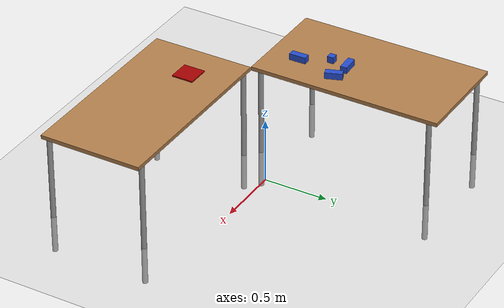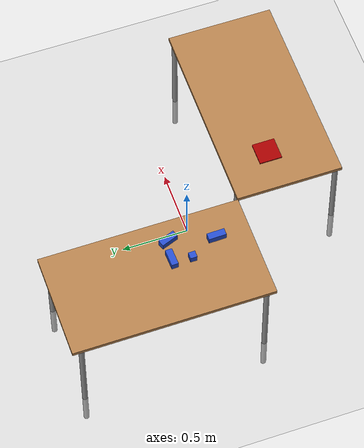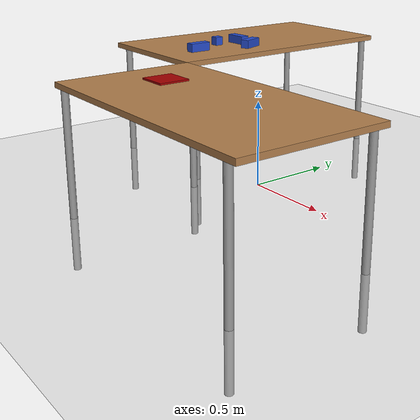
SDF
<sdf version="1.7">
 <world name="default">
  <light name="sun" type="directional">
   <pose>0 0 10 0 -0 0</pose>
   <diffuse>0.8 0.8 0.8 1</diffuse>
   <specular>0.2 0.2 0.2 1</specular>
   <attenuation>
    <range>1000</range>
    <constant>0.9</constant>
    <linear>0.01</linear>
    <quadratic>0.001</quadratic>
   </attenuation>
   <direction>-0.5 0.1 -0.9</direction>
   <spot><inner_angle>0</inner_angle><outer_angle>0</outer_angle><falloff>0</falloff></spot>
  </light>
  <model name="ground_plane">
   <static>1</static>
   <link name="link">
    <collision name="collision">
     <geometry><plane><normal>0 0 1</normal><size>100 100</size></plane></geometry>
     <surface>
      <contact><collide_bitmask>65535</collide_bitmask></contact>
      <friction><ode><mu>100</mu><mu2>50</mu2></ode></friction>
     </surface>
    </collision>
    <visual name="visual">
     <cast_shadows>0</cast_shadows>
     <geometry><plane><normal>0 0 1</normal><size>100 100</size></plane></geometry>
     <material>
      <script><uri>file://media/materials/scripts/gazebo.material</uri><name>Gazebo/Grey</name></script>
     </material>
    </visual>
   </link>
  </model>
  <gravity>0 0 -9.8</gravity>
  <magnetic_field>6e-06 2.3e-05 -4.2e-05</magnetic_field>
  <atmosphere type="adiabatic"/>
  <physics type="ode">
   <max_step_size>0.001</max_step_size>
   <real_time_factor>1</real_time_factor>
   <real_time_update_rate>1000</real_time_update_rate>
  </physics>
  <scene><ambient>0.4 0.4 0.4 1</ambient><background>0.7 0.7 0.7 1</background><shadows>1</shadows></scene>
  <spherical_coordinates>
   <surface_model>EARTH_WGS84</surface_model>
   <latitude_deg>0</latitude_deg>
   <longitude_deg>0</longitude_deg>
   <elevation>0</elevation>
   <heading_deg>0</heading_deg>
  </spherical_coordinates>
  <model name="table">
   <static>1</static>
   <link name="link">
    <collision name="surface">
     <pose>0 0 1 0 -0 0</pose>
     <geometry><box><size>1.5 0.8 0.03</size></box></geometry>
     <surface><friction><ode><mu>0.6</mu><mu2>0.6</mu2></ode></friction></surface>
    </collision>
    <visual name="visual1">
     <pose>0 0 1 0 -0 0</pose>
     <geometry><box><size>1.5 0.8 0.03</size></box></geometry>
     <material>
      <script><uri>file://media/materials/scripts/gazebo.material</uri><name>Gazebo/Wood</name></script>
     </material>
    </visual>
    <collision name="front_left_leg">
     <pose>0.68 0.38 0.5 0 -0 0</pose>
     <geometry><cylinder><radius>0.02</radius><length>1</length></cylinder></geometry>
    </collision>
    <visual name="front_left_leg">
     <pose>0.68 0.38 0.5 0 -0 0</pose>
     <geometry><cylinder><radius>0.02</radius><length>1</length></cylinder></geometry>
     <material>
      <script><uri>file://media/materials/scripts/gazebo.material</uri><name>Gazebo/Grey</name></script>
     </material>
    </visual>
    <collision name="front_right_leg">
     <pose>0.68 -0.38 0.5 0 -0 0</pose>
     <geometry><cylinder><radius>0.02</radius><length>1</length></cylinder></geometry>
    </collision>
    <visual name="front_right_leg">
     <pose>0.68 -0.38 0.5 0 -0 0</pose>
     <geometry><cylinder><radius>0.02</radius><length>1</length></cylinder></geometry>
     <material>
      <script><uri>file://media/materials/scripts/gazebo.material</uri><name>Gazebo/Grey</name></script>
     </material>
    </visual>
    <collision name="back_right_leg">
     <pose>-0.68 -0.38 0.5 0 -0 0</pose>
     <geometry><cylinder><radius>0.02</radius><length>1</length></cylinder></geometry>
    </collision>
    <visual name="back_right_leg">
     <pose>-0.68 -0.38 0.5 0 -0 0</pose>
     <geometry><cylinder><radius>0.02</radius><length>1</length></cylinder></geometry>
     <material>
      <script><uri>file://media/materials/scripts/gazebo.material</uri><name>Gazebo/Grey</name></script>
     </material>
    </visual>
    <collision name="back_left_leg">
     <pose>-0.68 0.38 0.5 0 -0 0</pose>
     <geometry><cylinder><radius>0.02</radius><length>1</length></cylinder></geometry>
    </collision>
    <visual name="back_left_leg">
     <pose>-0.68 0.38 0.5 0 -0 0</pose>
     <geometry><cylinder><radius>0.02</radius><length>1</length></cylinder></geometry>
     <material>
      <script><uri>file://media/materials/scripts/gazebo.material</uri><name>Gazebo/Grey</name></script>
     </material>
    </visual>
   </link>
   <pose>0.468234 -0.68668 -0.3 0 -0 0</pose>
  </model>
  <model name="table_0">
   <static>1</static>
   <link name="link">
    <collision name="surface">
     <pose>0 0 1 0 -0 0</pose>
     <geometry><box><size>1.5 0.8 0.03</size></box></geometry>
     <surface><friction><ode><mu>0.6</mu><mu2>0.6</mu2></ode></friction></surface>
    </collision>
    <visual name="visual1">
     <pose>0 0 1 0 -0 0</pose>
     <geometry><box><size>1.5 0.8 0.03</size></box></geometry>
     <material>
      <script><uri>file://media/materials/scripts/gazebo.material</uri><name>Gazebo/Wood</name></script>
     </material>
    </visual>
    <collision name="front_left_leg">
     <pose>0.68 0.38 0.5 0 -0 0</pose>
     <geometry><cylinder><radius>0.02</radius><length>1</length></cylinder></geometry>
    </collision>
    <visual name="front_left_leg">
     <pose>0.68 0.38 0.5 0 -0 0</pose>
     <geometry><cylinder><radius>0.02</radius><length>1</length></cylinder></geometry>
     <material>
      <script><uri>file://media/materials/scripts/gazebo.material</uri><name>Gazebo/Grey</name></script>
     </material>
    </visual>
    <collision name="front_right_leg">
     <pose>0.68 -0.38 0.5 0 -0 0</pose>
     <geometry><cylinder><radius>0.02</radius><length>1</length></cylinder></geometry>
    </collision>
    <visual name="front_right_leg">
     <pose>0.68 -0.38 0.5 0 -0 0</pose>
     <geometry><cylinder><radius>0.02</radius><length>1</length></cylinder></geometry>
     <material>
      <script><uri>file://media/materials/scripts/gazebo.material</uri><name>Gazebo/Grey</name></script>
     </material>
    </visual>
    <collision name="back_right_leg">
     <pose>-0.68 -0.38 0.5 0 -0 0</pose>
     <geometry><cylinder><radius>0.02</radius><length>1</length></cylinder></geometry>
    </collision>
    <visual name="back_right_leg">
     <pose>-0.68 -0.38 0.5 0 -0 0</pose>
     <geometry><cylinder><radius>0.02</radius><length>1</length></cylinder></geometry>
     <material>
      <script><uri>file://media/materials/scripts/gazebo.material</uri><name>Gazebo/Grey</name></script>
     </material>
    </visual>
    <collision name="back_left_leg">
     <pose>-0.68 0.38 0.5 0 -0 0</pose>
     <geometry><cylinder><radius>0.02</radius><length>1</length></cylinder></geometry>
    </collision>
    <visual name="back_left_leg">
     <pose>-0.68 0.38 0.5 0 -0 0</pose>
     <geometry><cylinder><radius>0.02</radius><length>1</length></cylinder></geometry>
     <material>
      <script><uri>file://media/materials/scripts/gazebo.material</uri><name>Gazebo/Grey</name></script>
     </material>
    </visual>
   </link>
   <pose>-0.689396 0.463337 -0.3 0 0 -1.5708</pose>
  </model>
  <model name="red_plate">
   <link name="link">
    <inertial>
     <mass>1</mass>
     <inertia>
      <ixx>0.166667</ixx>
      <ixy>0</ixy>
      <ixz>0</ixz>
      <iyy>0.166667</iyy>
      <iyz>0</iyz>
      <izz>0.166667</izz>
     </inertia>
    </inertial>
    <visual name="visual">
     <geometry><box><size>0.169497 0.169497 0.009721</size></box></geometry>
     <material>
      <script><name>Gazebo/Grey</name><uri>file://media/materials/scripts/gazebo.material</uri></script>
      <shader type="pixel"><normal_map>__default__</normal_map></shader>
      <ambient>0.643 0 0 1</ambient>
      <diffuse>0.643 0 0 1</diffuse>
      <specular>0.643 0 0 1</specular>
      <emissive>0 0 0 1</emissive>
     </material>
    </visual>
    <collision name="collision">
     <geometry><box><size>0.169497 0.169497 0.009721</size></box></geometry>
     <surface>
      <friction>
       <ode><mu>1</mu><mu2>1</mu2><fdir1>0 0 0</fdir1><slip1>0</slip1><slip2>0</slip2></ode>
       <torsional>
        <coefficient>1</coefficient>
        <patch_radius>0</patch_radius>
        <surface_radius>0</surface_radius>
        <use_patch_radius>1</use_patch_radius>
        <ode><slip>0</slip></ode>
       </torsional>
      </friction>
      <bounce><restitution_coefficient>0</restitution_coefficient><threshold>1e+06</threshold></bounce>
      <contact>
       <collide_without_contact>0</collide_without_contact>
       <collide_without_contact_bitmask>1</collide_without_contact_bitmask>
       <collide_bitmask>1</collide_bitmask>
       <ode>
        <soft_cfm>0</soft_cfm>
        <soft_erp>0.2</soft_erp>
        <kp>1e+13</kp>
        <kd>1</kd>
        <max_vel>0.01</max_vel>
        <min_depth>0</min_depth>
       </ode>
       <bullet>
        <split_impulse>1</split_impulse>
        <split_impulse_penetration_threshold>-0.01</split_impulse_penetration_threshold>
        <soft_cfm>0</soft_cfm>
        <soft_erp>0.2</soft_erp>
        <kp>1e+13</kp>
        <kd>1</kd>
       </bullet>
      </contact>
     </surface>
    </collision>
   </link>
   <static>0</static>
   <pose>0.025561 -0.623828 0.71986 0 -3e-06 2.4e-05</pose>
  </model>
  <model name="unit_box_red">
   <link name="link">
    <inertial>
     <mass>0.00013169</mass>
     <inertia><ixx>6e-08</ixx><ixy>0</ixy><ixz>0</ixz><iyy>6e-08</iyy><iyz>0</iyz><izz>6e-08</izz></inertia>
    </inertial>
    <visual name="visual">
     <geometry><box><size>0.050877 0.050877 0.050877</size></box></geometry>
     <material>
      <script><name>Gazebo/Blue</name><uri>file://media/materials/scripts/gazebo.material</uri></script>
      <shader type="pixel"><normal_map>__default__</normal_map></shader>
      <ambient>0.639 0 0 1</ambient>
      <diffuse>0.639 0 0 1</diffuse>
      <specular>0.639 0 0 1</specular>
      <emissive>0 0 0 1</emissive>
     </material>
    </visual>
    <collision name="collision">
     <geometry><box><size>0.050877 0.050877 0.050877</size></box></geometry>
     <surface>
      <friction>
       <ode><mu>50</mu><mu2>50</mu2><fdir1>0 0 0</fdir1><slip1>0</slip1><slip2>0</slip2></ode>
       <torsional>
        <coefficient>1</coefficient>
        <patch_radius>0</patch_radius>
        <surface_radius>0</surface_radius>
        <use_patch_radius>1</use_patch_radius>
        <ode><slip>0</slip></ode>
       </torsional>
      </friction>
      <bounce><restitution_coefficient>0</restitution_coefficient><threshold>1e+06</threshold></bounce>
      <contact>
       <collide_without_contact>0</collide_without_contact>
       <collide_without_contact_bitmask>1</collide_without_contact_bitmask>
       <collide_bitmask>1</collide_bitmask>
       <ode>
        <soft_cfm>0</soft_cfm>
        <soft_erp>0.2</soft_erp>
        <kp>1e+13</kp>
        <kd>1</kd>
        <max_vel>0.01</max_vel>
        <min_depth>0</min_depth>
       </ode>
       <bullet>
        <split_impulse>1</split_impulse>
        <split_impulse_penetration_threshold>-0.01</split_impulse_penetration_threshold>
        <soft_cfm>0</soft_cfm>
        <soft_erp>0.2</soft_erp>
        <kp>1e+13</kp>
        <kd>1</kd>
       </bullet>
      </contact>
     </surface>
    </collision>
   </link>
   <static>0</static>
   <pose>-0.643723 0.180518 0.740437 2e-05 5.7e-05 0.000165</pose>
  </model>
  <light name="user_directional_light_0" type="directional">
   <pose>1.51524 -2.18451 1 0 -0 0</pose>
   <diffuse>0.5 0.5 0.5 1</diffuse>
   <specular>0.1 0.1 0.1 1</specular>
   <direction>0.1 0.1 -0.9</direction>
   <attenuation>
    <range>20</range>
    <constant>0.5</constant>
    <linear>0.01</linear>
    <quadratic>0.001</quadratic>
   </attenuation>
   <spot><inner_angle>0</inner_angle><outer_angle>0</outer_angle><falloff>0</falloff></spot>
  </light>
  <light name="user_directional_light_1" type="directional">
   <pose>-1.70236 1.56902 1 0 -0 0</pose>
   <diffuse>0.5 0.5 0.5 1</diffuse>
   <specular>0.1 0.1 0.1 1</specular>
   <direction>0.1 0.1 -0.9</direction>
   <attenuation>
    <range>20</range>
    <constant>0.5</constant>
    <linear>0.01</linear>
    <quadratic>0.001</quadratic>
   </attenuation>
   <spot><inner_angle>0</inner_angle><outer_angle>0</outer_angle><falloff>0</falloff></spot>
  </light>
  <model name="unit_box_red_clone">
   <link name="link">
    <inertial>
     <mass>0.00013169</mass>
     <inertia><ixx>6e-08</ixx><ixy>0</ixy><ixz>0</ixz><iyy>6e-08</iyy><iyz>0</iyz><izz>6e-08</izz></inertia>
    </inertial>
    <visual name="visual">
     <geometry><box><size>0.050877 0.131313 0.050877</size></box></geometry>
     <material>
      <script><name>Gazebo/Blue</name><uri>file://media/materials/scripts/gazebo.material</uri></script>
      <shader type="pixel"><normal_map>__default__</normal_map></shader>
      <ambient>0.639 0 0 1</ambient>
      <diffuse>0.639 0 0 1</diffuse>
      <specular>0.639 0 0 1</specular>
      <emissive>0 0 0 1</emissive>
     </material>
    </visual>
    <collision name="collision">
     <geometry><box><size>0.050877 0.131313 0.050877</size></box></geometry>
     <surface>
      <friction>
       <ode><mu>50</mu><mu2>50</mu2><fdir1>0 0 0</fdir1><slip1>0</slip1><slip2>0</slip2></ode>
       <torsional>
        <coefficient>1</coefficient>
        <patch_radius>0</patch_radius>
        <surface_radius>0</surface_radius>
        <use_patch_radius>1</use_patch_radius>
        <ode><slip>0</slip></ode>
       </torsional>
      </friction>
      <bounce><restitution_coefficient>0</restitution_coefficient><threshold>1e+06</threshold></bounce>
      <contact>
       <collide_without_contact>0</collide_without_contact>
       <collide_without_contact_bitmask>1</collide_without_contact_bitmask>
       <collide_bitmask>1</collide_bitmask>
       <ode>
        <soft_cfm>0</soft_cfm>
        <soft_erp>0.2</soft_erp>
        <kp>1e+13</kp>
        <kd>1</kd>
        <max_vel>0.01</max_vel>
        <min_depth>0</min_depth>
       </ode>
       <bullet>
        <split_impulse>1</split_impulse>
        <split_impulse_penetration_threshold>-0.01</split_impulse_penetration_threshold>
        <soft_cfm>0</soft_cfm>
        <soft_erp>0.2</soft_erp>
        <kp>1e+13</kp>
        <kd>1</kd>
       </bullet>
      </contact>
     </surface>
    </collision>
   </link>
   <static>0</static>
   <pose>-0.53902 -0.034339 0.740437 0 5.4e-05 0.017597</pose>
  </model>
  <model name="unit_box_red_clone_clone">
   <link name="link">
    <inertial>
     <mass>0.00013169</mass>
     <inertia><ixx>6e-08</ixx><ixy>0</ixy><ixz>0</ixz><iyy>6e-08</iyy><iyz>0</iyz><izz>6e-08</izz></inertia>
    </inertial>
    <visual name="visual">
     <geometry><box><size>0.050877 0.131313 0.050877</size></box></geometry>
     <material>
      <script><name>Gazebo/Blue</name><uri>file://media/materials/scripts/gazebo.material</uri></script>
      <shader type="pixel"><normal_map>__default__</normal_map></shader>
      <ambient>0.639 0 0 1</ambient>
      <diffuse>0.639 0 0 1</diffuse>
      <specular>0.639 0 0 1</specular>
      <emissive>0 0 0 1</emissive>
     </material>
    </visual>
    <collision name="collision">
     <geometry><box><size>0.050877 0.131313 0.050877</size></box></geometry>
     <surface>
      <friction>
       <ode><mu>50</mu><mu2>50</mu2><fdir1>0 0 0</fdir1><slip1>0</slip1><slip2>0</slip2></ode>
       <torsional>
        <coefficient>1</coefficient>
        <patch_radius>0</patch_radius>
        <surface_radius>0</surface_radius>
        <use_patch_radius>1</use_patch_radius>
        <ode><slip>0</slip></ode>
       </torsional>
      </friction>
      <bounce><restitution_coefficient>0</restitution_coefficient><threshold>1e+06</threshold></bounce>
      <contact>
       <collide_without_contact>0</collide_without_contact>
       <collide_without_contact_bitmask>1</collide_without_contact_bitmask>
       <collide_bitmask>1</collide_bitmask>
       <ode>
        <soft_cfm>0</soft_cfm>
        <soft_erp>0.2</soft_erp>
        <kp>1e+13</kp>
        <kd>1</kd>
        <max_vel>0.01</max_vel>
        <min_depth>0</min_depth>
       </ode>
       <bullet>
        <split_impulse>1</split_impulse>
        <split_impulse_penetration_threshold>-0.01</split_impulse_penetration_threshold>
        <soft_cfm>0</soft_cfm>
        <soft_erp>0.2</soft_erp>
        <kp>1e+13</kp>
        <kd>1</kd>
       </bullet>
      </contact>
     </surface>
    </collision>
   </link>
   <static>0</static>
   <pose>-0.458562 0.29998 0.740437 -1e-06 4.6e-05 0.35271</pose>
  </model>
  <model name="unit_box_red_clone_clone_0">
   <link name="link">
    <inertial>
     <mass>0.00013169</mass>
     <inertia><ixx>6e-08</ixx><ixy>0</ixy><ixz>0</ixz><iyy>6e-08</iyy><iyz>0</iyz><izz>6e-08</izz></inertia>
    </inertial>
    <visual name="visual">
     <geometry><box><size>0.050877 0.131313 0.050877</size></box></geometry>
     <material>
      <script><name>Gazebo/Blue</name><uri>file://media/materials/scripts/gazebo.material</uri></script>
      <shader type="pixel"><normal_map>__default__</normal_map></shader>
      <ambient>0.639 0 0 1</ambient>
      <diffuse>0.639 0 0 1</diffuse>
      <specular>0.639 0 0 1</specular>
      <emissive>0 0 0 1</emissive>
     </material>
    </visual>
    <collision name="collision">
     <geometry><box><size>0.050877 0.131313 0.050877</size></box></geometry>
     <surface>
      <friction>
       <ode><mu>50</mu><mu2>50</mu2><fdir1>0 0 0</fdir1><slip1>0</slip1><slip2>0</slip2></ode>
       <torsional>
        <coefficient>1</coefficient>
        <patch_radius>0</patch_radius>
        <surface_radius>0</surface_radius>
        <use_patch_radius>1</use_patch_radius>
        <ode><slip>0</slip></ode>
       </torsional>
      </friction>
      <bounce><restitution_coefficient>0</restitution_coefficient><threshold>1e+06</threshold></bounce>
      <contact>
       <collide_without_contact>0</collide_without_contact>
       <collide_without_contact_bitmask>1</collide_without_contact_bitmask>
       <collide_bitmask>1</collide_bitmask>
       <ode>
        <soft_cfm>0</soft_cfm>
        <soft_erp>0.2</soft_erp>
        <kp>1e+13</kp>
        <kd>1</kd>
        <max_vel>0.01</max_vel>
        <min_depth>0</min_depth>
       </ode>
       <bullet>
        <split_impulse>1</split_impulse>
        <split_impulse_penetration_threshold>-0.01</split_impulse_penetration_threshold>
        <soft_cfm>0</soft_cfm>
        <soft_erp>0.2</soft_erp>
        <kp>1e+13</kp>
        <kd>1</kd>
       </bullet>
      </contact>
     </surface>
    </collision>
   </link>
   <static>0</static>
   <pose>-0.61248 0.325044 0.740434 0 0.000175 1.60631</pose>
  </model>
 </world>
</sdf>
